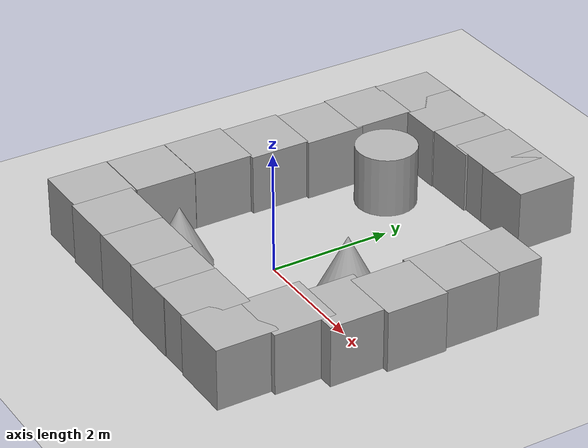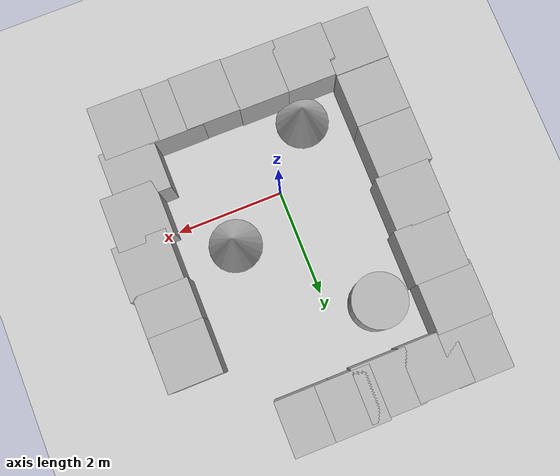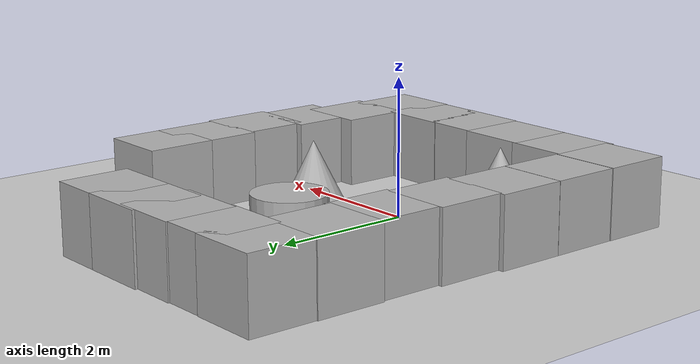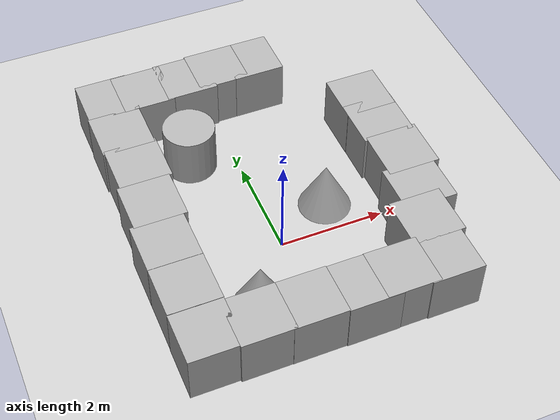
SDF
<sdf version='1.10'>
  <world name='empty'>

    <physics name='1ms' type='ignored'>
      <max_step_size>0.001</max_step_size>
      <real_time_factor>1</real_time_factor>
      <real_time_update_rate>1000</real_time_update_rate>
    </physics>

    <plugin name='gz::sim::systems::Physics'        filename='gz-sim-physics-system'/>
    <plugin name='gz::sim::systems::UserCommands'   filename='gz-sim-user-commands-system'/>
    <plugin name='gz::sim::systems::SceneBroadcaster' filename='gz-sim-scene-broadcaster-system'/>
    <plugin name='gz::sim::systems::Sensors'        filename='gz-sim-sensors-system'>
      <render_engine>ogre2</render_engine>
    </plugin>
    <plugin name='gz::sim::systems::Contact'        filename='gz-sim-contact-system'/>

    <gravity>0 0 -9.8</gravity>
    <magnetic_field>5.5645e-06 2.28758e-05 -4.23884e-05</magnetic_field>
    <atmosphere type='adiabatic'/>

    <scene>
      <ambient>0.4 0.4 0.4 1</ambient>
      <background>0.7 0.7 0.7 1</background>
      <shadows>true</shadows>
    </scene>

    <!-- Ground plane -->
    <model name='ground_plane'>
      <static>true</static>
      <link name='link'>
        <collision name='collision'>
          <geometry><plane><normal>0 0 1</normal><size>100 100</size></plane></geometry>
        </collision>
        <visual name='visual'>
          <geometry><plane><normal>0 0 1</normal><size>100 100</size></plane></geometry>
          <material>
            <ambient>0.8 0.8 0.8 1</ambient>
            <diffuse>0.8 0.8 0.8 1</diffuse>
            <specular>0.8 0.8 0.8 1</specular>
          </material>
        </visual>
      </link>
    </model>

    <!-- ── Box obstacles (20 × 1m³) ─────────────────────────────── -->
    <model name='box'>   <pose>2.572  1.446 0.5 0 0 0</pose>
      <link name='box_link'>
        <inertial><mass>1</mass><inertia><ixx>0.16666</ixx><ixy>0</ixy><ixz>0</ixz><iyy>0.16666</iyy><iyz>0</iyz><izz>0.16666</izz></inertia></inertial>
        <collision name='box_collision'><geometry><box><size>1 1 1</size></box></geometry></collision>
        <visual name='box_visual'><geometry><box><size>1 1 1</size></box></geometry>
          <material><ambient>0.3 0.3 0.3 1</ambient><diffuse>0.7 0.7 0.7 1</diffuse><specular>1 1 1 1</specular></material></visual>
      </link><static>false</static></model>

    <model name='box_0'> <pose>2.626  0.520 0.5 0 0 0</pose>
      <link name='box_link'><inertial><mass>1</mass><inertia><ixx>0.16666</ixx><ixy>0</ixy><ixz>0</ixz><iyy>0.16666</iyy><iyz>0</iyz><izz>0.16666</izz></inertia></inertial>
        <collision name='box_collision'><geometry><box><size>1 1 1</size></box></geometry></collision>
        <visual name='box_visual'><geometry><box><size>1 1 1</size></box></geometry>
          <material><ambient>0.3 0.3 0.3 1</ambient><diffuse>0.7 0.7 0.7 1</diffuse><specular>1 1 1 1</specular></material></visual>
      </link><static>false</static></model>

    <model name='box_1'> <pose>2.520 -0.362 0.5 0 0 0</pose>
      <link name='box_link'><inertial><mass>1</mass><inertia><ixx>0.16666</ixx><ixy>0</ixy><ixz>0</ixz><iyy>0.16666</iyy><iyz>0</iyz><izz>0.16666</izz></inertia></inertial>
        <collision name='box_collision'><geometry><box><size>1 1 1</size></box></geometry></collision>
        <visual name='box_visual'><geometry><box><size>1 1 1</size></box></geometry>
          <material><ambient>0.3 0.3 0.3 1</ambient><diffuse>0.7 0.7 0.7 1</diffuse><specular>1 1 1 1</specular></material></visual>
      </link><static>false</static></model>

    <model name='box_2'> <pose>2.277 -1.119 0.5 0 0 0</pose>
      <link name='box_link'><inertial><mass>1</mass><inertia><ixx>0.16666</ixx><ixy>0</ixy><ixz>0</ixz><iyy>0.16666</iyy><iyz>0</iyz><izz>0.16666</izz></inertia></inertial>
        <collision name='box_collision'><geometry><box><size>1 1 1</size></box></geometry></collision>
        <visual name='box_visual'><geometry><box><size>1 1 1</size></box></geometry>
          <material><ambient>0.3 0.3 0.3 1</ambient><diffuse>0.7 0.7 0.7 1</diffuse><specular>1 1 1 1</specular></material></visual>
      </link><static>false</static></model>

    <model name='box_3'> <pose>2.183 -1.989 0.5 0 0 0</pose>
      <link name='box_link'><inertial><mass>1</mass><inertia><ixx>0.16666</ixx><ixy>0</ixy><ixz>0</ixz><iyy>0.16666</iyy><iyz>0</iyz><izz>0.16666</izz></inertia></inertial>
        <collision name='box_collision'><geometry><box><size>1 1 1</size></box></geometry></collision>
        <visual name='box_visual'><geometry><box><size>1 1 1</size></box></geometry>
          <material><ambient>0.3 0.3 0.3 1</ambient><diffuse>0.7 0.7 0.7 1</diffuse><specular>1 1 1 1</specular></material></visual>
      </link><static>false</static></model>

    <model name='box_4'> <pose>1.361 -1.969 0.5 0 0 0</pose>
      <link name='box_link'><inertial><mass>1</mass><inertia><ixx>0.16666</ixx><ixy>0</ixy><ixz>0</ixz><iyy>0.16666</iyy><iyz>0</iyz><izz>0.16666</izz></inertia></inertial>
        <collision name='box_collision'><geometry><box><size>1 1 1</size></box></geometry></collision>
        <visual name='box_visual'><geometry><box><size>1 1 1</size></box></geometry>
          <material><ambient>0.3 0.3 0.3 1</ambient><diffuse>0.7 0.7 0.7 1</diffuse><specular>1 1 1 1</specular></material></visual>
      </link><static>false</static></model>

    <model name='box_5'> <pose>0.659 -1.978 0.5 0 0 0</pose>
      <link name='box_link'><inertial><mass>1</mass><inertia><ixx>0.16666</ixx><ixy>0</ixy><ixz>0</ixz><iyy>0.16666</iyy><iyz>0</iyz><izz>0.16666</izz></inertia></inertial>
        <collision name='box_collision'><geometry><box><size>1 1 1</size></box></geometry></collision>
        <visual name='box_visual'><geometry><box><size>1 1 1</size></box></geometry>
          <material><ambient>0.3 0.3 0.3 1</ambient><diffuse>0.7 0.7 0.7 1</diffuse><specular>1 1 1 1</specular></material></visual>
      </link><static>false</static></model>

    <model name='box_6'> <pose>-0.329 -1.963 0.5 0 0 0</pose>
      <link name='box_link'><inertial><mass>1</mass><inertia><ixx>0.16666</ixx><ixy>0</ixy><ixz>0</ixz><iyy>0.16666</iyy><iyz>0</iyz><izz>0.16666</izz></inertia></inertial>
        <collision name='box_collision'><geometry><box><size>1 1 1</size></box></geometry></collision>
        <visual name='box_visual'><geometry><box><size>1 1 1</size></box></geometry>
          <material><ambient>0.3 0.3 0.3 1</ambient><diffuse>0.7 0.7 0.7 1</diffuse><specular>1 1 1 1</specular></material></visual>
      </link><static>false</static></model>

    <model name='box_7'> <pose>-1.259 -1.958 0.5 0 0 0</pose>
      <link name='box_link'><inertial><mass>1</mass><inertia><ixx>0.16666</ixx><ixy>0</ixy><ixz>0</ixz><iyy>0.16666</iyy><iyz>0</iyz><izz>0.16666</izz></inertia></inertial>
        <collision name='box_collision'><geometry><box><size>1 1 1</size></box></geometry></collision>
        <visual name='box_visual'><geometry><box><size>1 1 1</size></box></geometry>
          <material><ambient>0.3 0.3 0.3 1</ambient><diffuse>0.7 0.7 0.7 1</diffuse><specular>1 1 1 1</specular></material></visual>
      </link><static>false</static></model>

    <model name='box_8'> <pose>-2.154 -1.924 0.5 0 0 0</pose>
      <link name='box_link'><inertial><mass>1</mass><inertia><ixx>0.16666</ixx><ixy>0</ixy><ixz>0</ixz><iyy>0.16666</iyy><iyz>0</iyz><izz>0.16666</izz></inertia></inertial>
        <collision name='box_collision'><geometry><box><size>1 1 1</size></box></geometry></collision>
        <visual name='box_visual'><geometry><box><size>1 1 1</size></box></geometry>
          <material><ambient>0.3 0.3 0.3 1</ambient><diffuse>0.7 0.7 0.7 1</diffuse><specular>1 1 1 1</specular></material></visual>
      </link><static>false</static></model>

    <model name='box_9'> <pose>-2.147 -0.917 0.5 0 0 0</pose>
      <link name='box_link'><inertial><mass>1</mass><inertia><ixx>0.16666</ixx><ixy>0</ixy><ixz>0</ixz><iyy>0.16666</iyy><iyz>0</iyz><izz>0.16666</izz></inertia></inertial>
        <collision name='box_collision'><geometry><box><size>1 1 1</size></box></geometry></collision>
        <visual name='box_visual'><geometry><box><size>1 1 1</size></box></geometry>
          <material><ambient>0.3 0.3 0.3 1</ambient><diffuse>0.7 0.7 0.7 1</diffuse><specular>1 1 1 1</specular></material></visual>
      </link><static>false</static></model>

    <model name='box_10'><pose>-2.147  0.086 0.5 0 0 0</pose>
      <link name='box_link'><inertial><mass>1</mass><inertia><ixx>0.16666</ixx><ixy>0</ixy><ixz>0</ixz><iyy>0.16666</iyy><iyz>0</iyz><izz>0.16666</izz></inertia></inertial>
        <collision name='box_collision'><geometry><box><size>1 1 1</size></box></geometry></collision>
        <visual name='box_visual'><geometry><box><size>1 1 1</size></box></geometry>
          <material><ambient>0.3 0.3 0.3 1</ambient><diffuse>0.7 0.7 0.7 1</diffuse><specular>1 1 1 1</specular></material></visual>
      </link><static>false</static></model>

    <model name='box_11'><pose>-2.071  1.058 0.5 0 0 0</pose>
      <link name='box_link'><inertial><mass>1</mass><inertia><ixx>0.16666</ixx><ixy>0</ixy><ixz>0</ixz><iyy>0.16666</iyy><iyz>0</iyz><izz>0.16666</izz></inertia></inertial>
        <collision name='box_collision'><geometry><box><size>1 1 1</size></box></geometry></collision>
        <visual name='box_visual'><geometry><box><size>1 1 1</size></box></geometry>
          <material><ambient>0.3 0.3 0.3 1</ambient><diffuse>0.7 0.7 0.7 1</diffuse><specular>1 1 1 1</specular></material></visual>
      </link><static>false</static></model>

    <model name='box_12'><pose>-2.014  2.033 0.5 0 0 0</pose>
      <link name='box_link'><inertial><mass>1</mass><inertia><ixx>0.16666</ixx><ixy>0</ixy><ixz>0</ixz><iyy>0.16666</iyy><iyz>0</iyz><izz>0.16666</izz></inertia></inertial>
        <collision name='box_collision'><geometry><box><size>1 1 1</size></box></geometry></collision>
        <visual name='box_visual'><geometry><box><size>1 1 1</size></box></geometry>
          <material><ambient>0.3 0.3 0.3 1</ambient><diffuse>0.7 0.7 0.7 1</diffuse><specular>1 1 1 1</specular></material></visual>
      </link><static>false</static></model>

    <model name='box_13'><pose>-2.043  2.951 0.5 0 0 0</pose>
      <link name='box_link'><inertial><mass>1</mass><inertia><ixx>0.16666</ixx><ixy>0</ixy><ixz>0</ixz><iyy>0.16666</iyy><iyz>0</iyz><izz>0.16666</izz></inertia></inertial>
        <collision name='box_collision'><geometry><box><size>1 1 1</size></box></geometry></collision>
        <visual name='box_visual'><geometry><box><size>1 1 1</size></box></geometry>
          <material><ambient>0.3 0.3 0.3 1</ambient><diffuse>0.7 0.7 0.7 1</diffuse><specular>1 1 1 1</specular></material></visual>
      </link><static>false</static></model>

    <model name='box_14'><pose>-2.026  3.908 0.5 0 0 0</pose>
      <link name='box_link'><inertial><mass>1</mass><inertia><ixx>0.16666</ixx><ixy>0</ixy><ixz>0</ixz><iyy>0.16666</iyy><iyz>0</iyz><izz>0.16666</izz></inertia></inertial>
        <collision name='box_collision'><geometry><box><size>1 1 1</size></box></geometry></collision>
        <visual name='box_visual'><geometry><box><size>1 1 1</size></box></geometry>
          <material><ambient>0.3 0.3 0.3 1</ambient><diffuse>0.7 0.7 0.7 1</diffuse><specular>1 1 1 1</specular></material></visual>
      </link><static>false</static></model>

    <model name='box_15'><pose>-1.314  3.897 0.5 0 0 0</pose>
      <link name='box_link'><inertial><mass>1</mass><inertia><ixx>0.16666</ixx><ixy>0</ixy><ixz>0</ixz><iyy>0.16666</iyy><iyz>0</iyz><izz>0.16666</izz></inertia></inertial>
        <collision name='box_collision'><geometry><box><size>1 1 1</size></box></geometry></collision>
        <visual name='box_visual'><geometry><box><size>1 1 1</size></box></geometry>
          <material><ambient>0.3 0.3 0.3 1</ambient><diffuse>0.7 0.7 0.7 1</diffuse><specular>1 1 1 1</specular></material></visual>
      </link><static>false</static></model>

    <model name='box_16'><pose>-0.434  3.918 0.5 0 0 0</pose>
      <link name='box_link'><inertial><mass>1</mass><inertia><ixx>0.16666</ixx><ixy>0</ixy><ixz>0</ixz><iyy>0.16666</iyy><iyz>0</iyz><izz>0.16666</izz></inertia></inertial>
        <collision name='box_collision'><geometry><box><size>1 1 1</size></box></geometry></collision>
        <visual name='box_visual'><geometry><box><size>1 1 1</size></box></geometry>
          <material><ambient>0.3 0.3 0.3 1</ambient><diffuse>0.7 0.7 0.7 1</diffuse><specular>1 1 1 1</specular></material></visual>
      </link><static>false</static></model>

    <model name='box_17'><pose>0.237  3.957 0.5 0 0 0</pose>
      <link name='box_link'><inertial><mass>1</mass><inertia><ixx>0.16666</ixx><ixy>0</ixy><ixz>0</ixz><iyy>0.16666</iyy><iyz>0</iyz><izz>0.16666</izz></inertia></inertial>
        <collision name='box_collision'><geometry><box><size>1 1 1</size></box></geometry></collision>
        <visual name='box_visual'><geometry><box><size>1 1 1</size></box></geometry>
          <material><ambient>0.3 0.3 0.3 1</ambient><diffuse>0.7 0.7 0.7 1</diffuse><specular>1 1 1 1</specular></material></visual>
      </link><static>false</static></model>

    <model name='box_18'><pose>0.969  3.956 0.5 0 0 0</pose>
      <link name='box_link'><inertial><mass>1</mass><inertia><ixx>0.16666</ixx><ixy>0</ixy><ixz>0</ixz><iyy>0.16666</iyy><iyz>0</iyz><izz>0.16666</izz></inertia></inertial>
        <collision name='box_collision'><geometry><box><size>1 1 1</size></box></geometry></collision>
        <visual name='box_visual'><geometry><box><size>1 1 1</size></box></geometry>
          <material><ambient>0.3 0.3 0.3 1</ambient><diffuse>0.7 0.7 0.7 1</diffuse><specular>1 1 1 1</specular></material></visual>
      </link><static>false</static></model>

    <model name='box_19'><pose>2.567  2.194 0.5 0 0 0</pose>
      <link name='box_link'><inertial><mass>1</mass><inertia><ixx>0.16666</ixx><ixy>0</ixy><ixz>0</ixz><iyy>0.16666</iyy><iyz>0</iyz><izz>0.16666</izz></inertia></inertial>
        <collision name='box_collision'><geometry><box><size>1 1 1</size></box></geometry></collision>
        <visual name='box_visual'><geometry><box><size>1 1 1</size></box></geometry>
          <material><ambient>0.3 0.3 0.3 1</ambient><diffuse>0.7 0.7 0.7 1</diffuse><specular>1 1 1 1</specular></material></visual>
      </link><static>false</static></model>

    <!-- ── Cylindrical pillar ─────────────────────────────────────── -->
    <model name='cylinder'>
      <pose>-0.845 2.545 0.5 0 0 0</pose>
      <link name='cylinder_link'>
        <inertial><mass>1</mass><inertia><ixx>0.1458</ixx><ixy>0</ixy><ixz>0</ixz><iyy>0.1458</iyy><iyz>0</iyz><izz>0.125</izz></inertia></inertial>
        <collision name='cylinder_collision'><geometry><cylinder><radius>0.5</radius><length>1</length></cylinder></geometry></collision>
        <visual name='cylinder_visual'><geometry><cylinder><radius>0.5</radius><length>1</length></cylinder></geometry>
          <material><ambient>0.3 0.3 0.3 1</ambient><diffuse>0.7 0.7 0.7 1</diffuse><specular>1 1 1 1</specular></material></visual>
      </link><static>false</static></model>

    <!-- ── Cone obstacles ─────────────────────────────────────────── -->
    <model name='cone'>
      <pose>-0.878 -1.111 0.5 0 0 0</pose>
      <link name='cone_link'>
        <inertial><mass>1</mass><inertia><ixx>0.075</ixx><ixy>0</ixy><ixz>0</ixz><iyy>0.075</iyy><iyz>0</iyz><izz>0.075</izz></inertia></inertial>
        <collision name='cone_collision'><geometry><cone><radius>0.5</radius><length>1</length></cone></geometry></collision>
        <visual name='cone_visual'><geometry><cone><radius>0.5</radius><length>1</length></cone></geometry>
          <material><ambient>0.3 0.3 0.3 1</ambient><diffuse>0.7 0.7 0.7 1</diffuse><specular>1 1 1 1</specular></material></visual>
      </link><static>false</static></model>

    <model name='cone_0'>
      <pose>1.124 0.611 0.5 0 0 0</pose>
      <link name='cone_link'>
        <inertial><mass>1</mass><inertia><ixx>0.075</ixx><ixy>0</ixy><ixz>0</ixz><iyy>0.075</iyy><iyz>0</iyz><izz>0.075</izz></inertia></inertial>
        <collision name='cone_collision'><geometry><cone><radius>0.5</radius><length>1</length></cone></geometry></collision>
        <visual name='cone_visual'><geometry><cone><radius>0.5</radius><length>1</length></cone></geometry>
          <material><ambient>0.3 0.3 0.3 1</ambient><diffuse>0.7 0.7 0.7 1</diffuse><specular>1 1 1 1</specular></material></visual>
      </link><static>false</static></model>

    <!-- Directional sunlight -->
    <light name='sun' type='directional'>
      <pose>0 0 10 0 0 0</pose>
      <cast_shadows>true</cast_shadows>
      <direction>-0.5 0.1 -0.9</direction>
      <diffuse>0.8 0.8 0.8 1</diffuse>
      <specular>0.2 0.2 0.2 1</specular>
      <attenuation><range>1000</range><linear>0.01</linear><constant>0.9</constant><quadratic>0.001</quadratic></attenuation>
    </light>

  </world>
</sdf>
